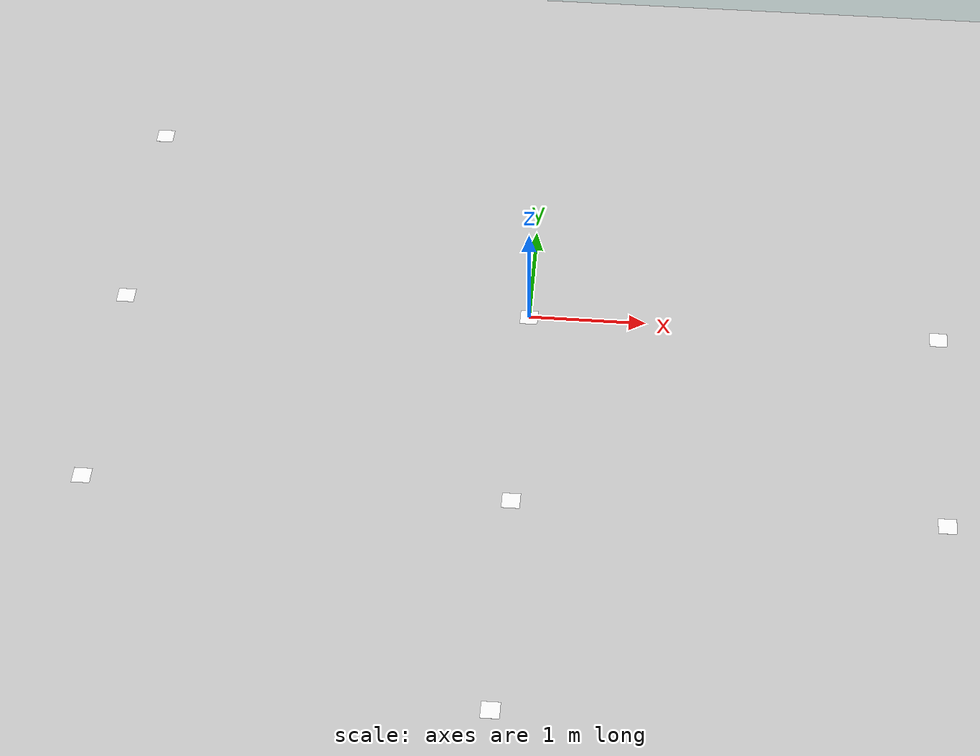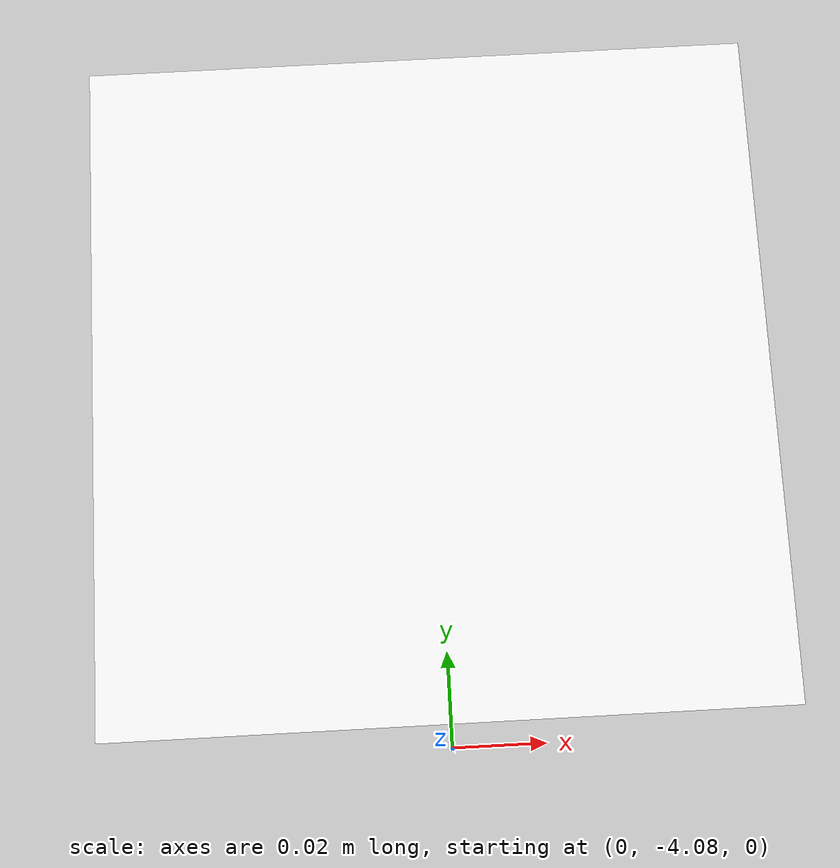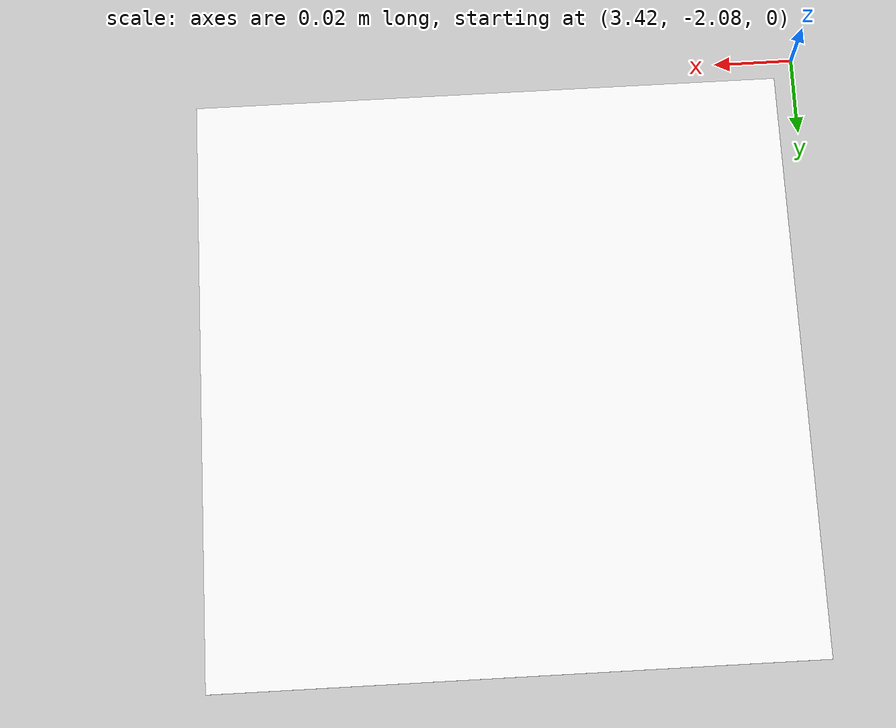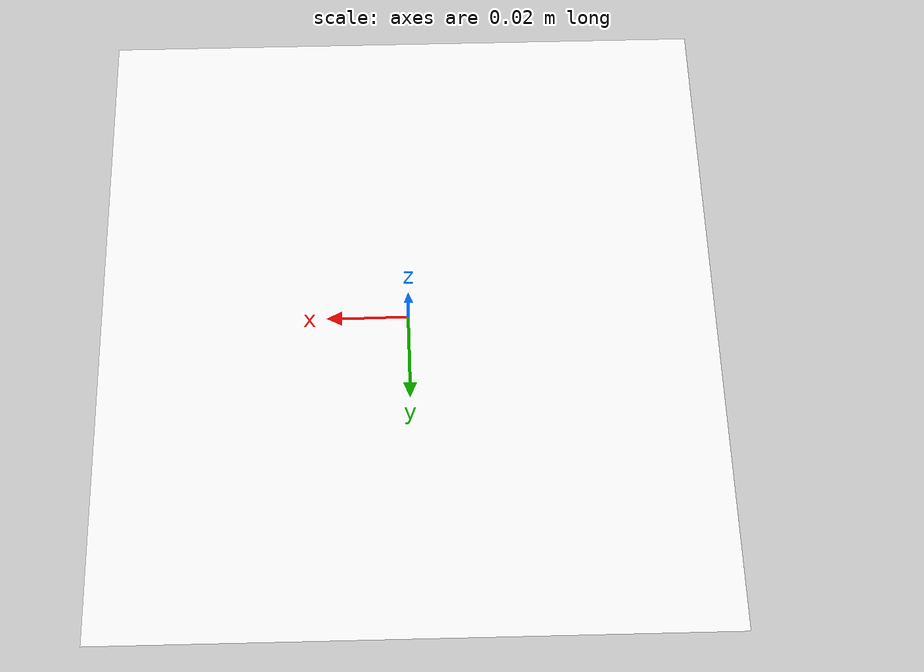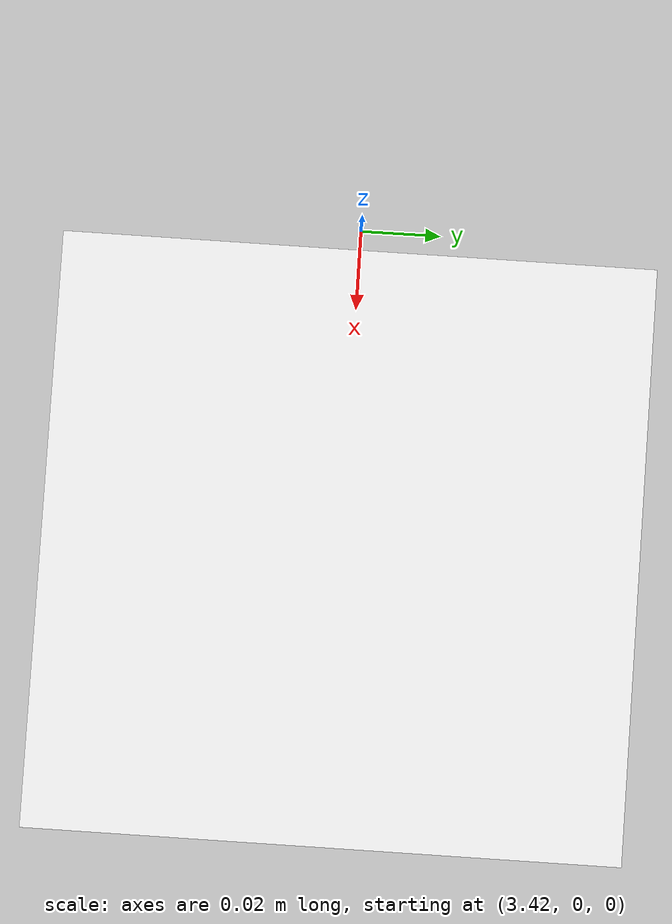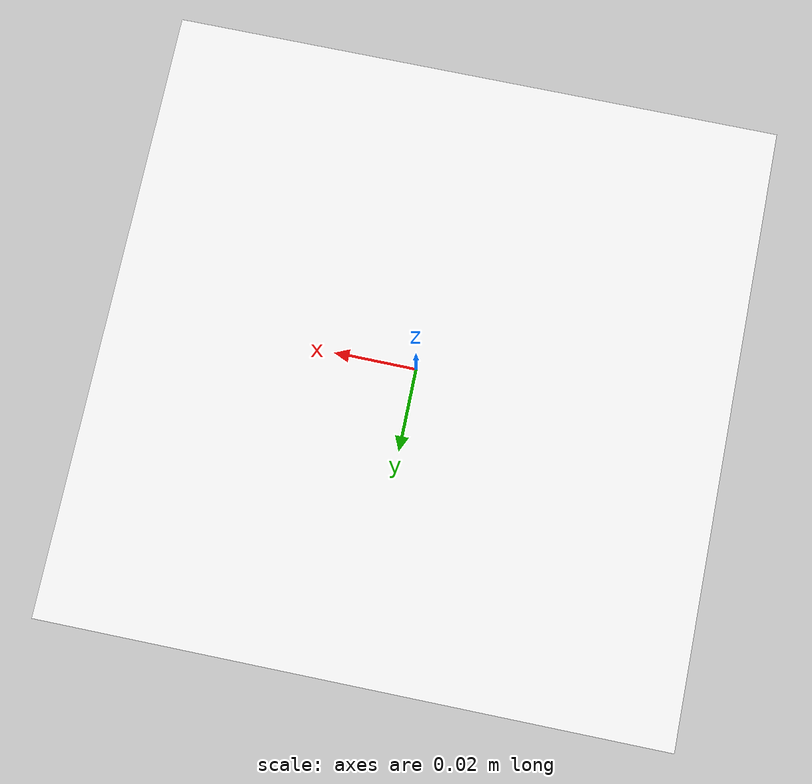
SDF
<sdf version="1.9">
 <world name="erc">
  <physics type="ode">
   <max_step_size>0.004</max_step_size>
   <real_time_factor>1.0</real_time_factor>
   <real_time_update_rate>250</real_time_update_rate>
  </physics>
  <gravity>0 0 -9.8</gravity>
  <magnetic_field>6e-06 2.3e-05 -4.2e-05</magnetic_field>
  <scene><ambient>0.4 0.4 0.4 1</ambient><background>0.7 0.7 0.7 1</background><shadows>true</shadows></scene>
  <model name="ground_plane">
   <static>true</static>
   <link name="link">
    <collision name="collision">
     <geometry><plane><normal>0 0 1</normal><size>50 50</size></plane></geometry>
    </collision>
    <visual name="visual">
     <geometry><plane><normal>0 0 1</normal><size>50 50</size></plane></geometry>
     <material><ambient>0.8 0.8 0.8 1</ambient><diffuse>0.8 0.8 0.8 1</diffuse></material>
    </visual>
   </link>
  </model>
  <light name="sun" type="directional">
   <pose>0 0 500 0 0 0</pose>
   <direction>0.1 0.1 -0.9</direction>
   <diffuse>1 1 1 1</diffuse>
   <specular>0.2 0.2 0.2 1</specular>
  </light>
  <include><uri>model://arucotag_5x5_102</uri><name>tag_102</name><pose>-3.5 -2.0 0.001 0 0 0</pose></include>
  <include><uri>model://arucotag_5x5_103</uri><name>tag_103</name><pose>0 -2.0 0.001 0 0 0</pose></include>
  <include><uri>model://arucotag_5x5_104</uri><name>tag_104</name><pose>3.5 -2.0 0.001 0 0 0</pose></include>
  <include><uri>model://arucotag_5x5_105</uri><name>tag_105</name><pose>-3.5 0 0.001 0 0 0</pose></include>
  <include><uri>model://arucotag_5x5_106</uri><name>tag_106</name><pose>0 0 0.001 0 0 0</pose></include>
  <include><uri>model://arucotag_5x5_107</uri><name>tag_107</name><pose>3.5 0 0.001 0 0 0</pose></include>
  <include><uri>model://arucotag_5x5_108</uri><name>tag_108</name><pose>-3.5 2.0 0.001 0 0 0</pose></include>
  <include><uri>model://arucotag_5x5_101</uri><name>tag_101</name><pose>0 -4.0 0.001 0 0 0</pose></include>
  <spherical_coordinates>
   <surface_model>EARTH_WGS84</surface_model>
   <world_frame_orientation>ENU</world_frame_orientation>
   <latitude_deg>47.397971057728974</latitude_deg>
   <longitude_deg>8.546163739800146</longitude_deg>
   <elevation>0</elevation>
  </spherical_coordinates>
 </world>
</sdf>

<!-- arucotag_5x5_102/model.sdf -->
<sdf version='1.9'>
  <model name='arucotag_5x5_102'>
    <static>true</static>
    <pose>0 0 0.001 0 0 0</pose>
    <link name='base'>
      <visual name='base_visual'>
        <geometry>
          <plane>
            <normal>0 0 1</normal>
            <size>0.15 0.15</size>
          </plane>
        </geometry>
        <material>
          <diffuse>1 1 1 1</diffuse>
          <specular>0.4 0.4 0.4 1</specular>
          <pbr>
            <metal>
              <albedo_map>model://arucotag/arucotag.png</albedo_map>
            </metal>
          </pbr>
        </material>
      </visual>
    </link>
  </model>
</sdf>

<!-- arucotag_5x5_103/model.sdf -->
<sdf version='1.9'>
  <model name='arucotag_5x5_103'>
    <static>true</static>
    <pose>0 0 0.001 0 0 0</pose>
    <link name='base'>
      <visual name='base_visual'>
        <geometry>
          <plane>
            <normal>0 0 1</normal>
            <size>0.15 0.15</size>
          </plane>
        </geometry>
        <material>
          <diffuse>1 1 1 1</diffuse>
          <specular>0.4 0.4 0.4 1</specular>
          <pbr>
            <metal>
              <albedo_map>model://arucotag/arucotag.png</albedo_map>
            </metal>
          </pbr>
        </material>
      </visual>
    </link>
  </model>
</sdf>

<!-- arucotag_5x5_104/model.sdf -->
<sdf version='1.9'>
  <model name='arucotag_5x5_104'>
    <static>true</static>
    <pose>0 0 0.001 0 0 0</pose>
    <link name='base'>
      <visual name='base_visual'>
        <geometry>
          <plane>
            <normal>0 0 1</normal>
            <size>0.15 0.15</size>
          </plane>
        </geometry>
        <material>
          <diffuse>1 1 1 1</diffuse>
          <specular>0.4 0.4 0.4 1</specular>
          <pbr>
            <metal>
              <albedo_map>model://arucotag/arucotag.png</albedo_map>
            </metal>
          </pbr>
        </material>
      </visual>
    </link>
  </model>
</sdf>

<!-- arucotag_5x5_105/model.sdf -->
<sdf version='1.9'>
  <model name='arucotag_5x5_105'>
    <static>true</static>
    <pose>0 0 0.001 0 0 0</pose>
    <link name='base'>
      <visual name='base_visual'>
        <geometry>
          <plane>
            <normal>0 0 1</normal>
            <size>0.15 0.15</size>
          </plane>
        </geometry>
        <material>
          <diffuse>1 1 1 1</diffuse>
          <specular>0.4 0.4 0.4 1</specular>
          <pbr>
            <metal>
              <albedo_map>model://arucotag/arucotag.png</albedo_map>
            </metal>
          </pbr>
        </material>
      </visual>
    </link>
  </model>
</sdf>

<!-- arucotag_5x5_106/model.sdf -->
<sdf version='1.9'>
  <model name='arucotag_5x5_106'>
    <static>true</static>
    <pose>0 0 0.001 0 0 0</pose>
    <link name='base'>
      <visual name='base_visual'>
        <geometry>
          <plane>
            <normal>0 0 1</normal>
            <size>0.15 0.15</size>
          </plane>
        </geometry>
        <material>
          <diffuse>1 1 1 1</diffuse>
          <specular>0.4 0.4 0.4 1</specular>
          <pbr>
            <metal>
              <albedo_map>model://arucotag/arucotag.png</albedo_map>
            </metal>
          </pbr>
        </material>
      </visual>
    </link>
  </model>
</sdf>

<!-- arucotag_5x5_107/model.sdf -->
<sdf version='1.9'>
  <model name='arucotag_5x5_107'>
    <static>true</static>
    <pose>0 0 0.001 0 0 0</pose>
    <link name='base'>
      <visual name='base_visual'>
        <geometry>
          <plane>
            <normal>0 0 1</normal>
            <size>0.15 0.15</size>
          </plane>
        </geometry>
        <material>
          <diffuse>1 1 1 1</diffuse>
          <specular>0.4 0.4 0.4 1</specular>
          <pbr>
            <metal>
              <albedo_map>model://arucotag/arucotag.png</albedo_map>
            </metal>
          </pbr>
        </material>
      </visual>
    </link>
  </model>
</sdf>

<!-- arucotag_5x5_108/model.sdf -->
<sdf version='1.9'>
  <model name='arucotag_5x5_108'>
    <static>true</static>
    <pose>0 0 0.001 0 0 0</pose>
    <link name='base'>
      <visual name='base_visual'>
        <geometry>
          <plane>
            <normal>0 0 1</normal>
            <size>0.15 0.15</size>
          </plane>
        </geometry>
        <material>
          <diffuse>1 1 1 1</diffuse>
          <specular>0.4 0.4 0.4 1</specular>
          <pbr>
            <metal>
              <albedo_map>model://arucotag/arucotag.png</albedo_map>
            </metal>
          </pbr>
        </material>
      </visual>
    </link>
  </model>
</sdf>

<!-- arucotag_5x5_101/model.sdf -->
<sdf version='1.9'>
  <model name='arucotag_5x5_101'>
    <static>true</static>
    <pose>0 0 0.001 0 0 0</pose>
    <link name='base'>
      <visual name='base_visual'>
        <geometry>
          <plane>
            <normal>0 0 1</normal>
            <size>0.15 0.15</size>
          </plane>
        </geometry>
        <material>
          <diffuse>1 1 1 1</diffuse>
          <specular>0.4 0.4 0.4 1</specular>
          <pbr>
            <metal>
              <albedo_map>model://arucotag/arucotag.png</albedo_map>
            </metal>
          </pbr>
        </material>
      </visual>
    </link>
  </model>
</sdf>
